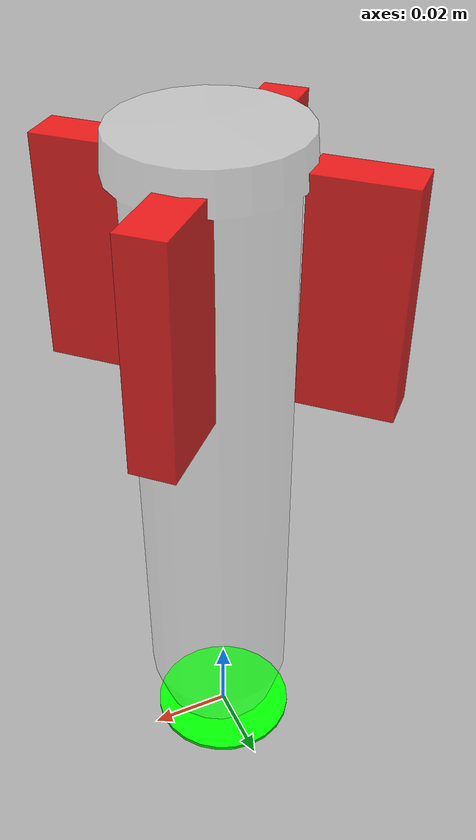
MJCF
<!-- @bbox dx=0.040 dy=0.042 dz=0.180 -->
<mujoco model="test_tube">
   <compiler angle="radian"/>
   <default>
    <default class="visual">
      <geom group="1" type="mesh" contype="0" conaffinity="0" mass="0.01"/>
    </default>
    <default class="collision">
      <geom group="3" solref="0.001 2" solimp="0.998 0.998 0.001" friction="1 1 0.001" mass="0"/>
    </default>
    <default class="keypoint">
      <site type="sphere" size="0.01" group="3" rgba="1 0 0 1"/>
    </default>
    <default class="grasppoint">
      <site type="sphere" size="0.02" group="4" rgba="0 0 1 0.2"/>
    </default>
  </default>
  <asset>
    <material name="cap" specular="0.5" shininess="0.006280824" rgba="1. 1. 1. 100000"/>
    <material name="body" rgba="1. 1. 1. 0.2520"/>

    <material name="CuCl2" rgba="0.141000 1.000000 0.174043 0.400000"/>
    <material name="CuSO4" rgba="0 0.45 1 0.400000"/>
    <material name="FeCl3" rgba="0.6475 0.5686 0.023 0.400000"/>
    <material name="KMnO4" rgba="0.5 0 0.5 0.4"/>
    <material name="I2" rgba="0.3 0.13 0.0 0.4"/>
    <material name="K2CrO4" rgba="0.57 0.12 0.013 0.40000"/>
    <material name="NaCl" rgba="1 1 1 0.3"/>
    <material name="AgNO3" rgba="1 1 1 0.3"/>
    <material name="BaCl2" rgba="1 1 1 0.3"/>
    <material name="H2SO4" rgba="1 1 1 0.3"/>
    <material name="NaOH" rgba="1 1 1 0.3"/>
    <material name="Ba(NO3)2" rgba="1 1 1 0.3"/>
    <material name="Pb(NO3)2" rgba="1 1 1 0.3"/>
    <material name="Na2CO3" rgba="1 1 1 0.3"/>
    <material name="CaCl2" rgba="1 1 1 0.3"/>
    <material name="HCl" rgba="1 1 1 0.3"/>
    <material name="CaSO4" rgba="1 1 1 0.7"/>
    <mesh name="solution" file="tube_0.obj" scale="0.018 0.018 0.018"/>
    <mesh name="cap" file="tube_1.obj" scale="0.018 0.018 0.018"/>
    <mesh name="body" file="tube_2.obj" scale="0.018 0.018 0.018"/>
  </asset>
  <worldbody>
    <body name="tube" euler="1.57 0 0">
      <geom name="solution" type="mesh" mesh="solution" material="CaSO4" class="visual"/>
      <geom type="mesh" mesh="body" material="body" class="visual"/>
      <geom type="mesh" mesh="solution" class="collision"/>
      <geom type="mesh" mesh="body" class="collision"/>
      <geom type="box" class="collision" pos="0.002 0.13 0" size="0.018 0.018 0.018"/>
      <geom name="tube_base_visual" type="cylinder" size="0.018 0.0005" pos="0 0.0005 0" quat="0.7071068 0.7071068 0 0" rgba="0 1 0 1" class="visual"/>
      <geom name="tube_base_collision" type="cylinder" size="0.018 0.0005" pos="0 0.0005 0" quat="0.7071068 0.7071068 0 0" class="collision"/>
      <!-- Visual plates (contype=0 conaffinity=0 → rgba renders fully). Rotated ±45° around Y. -->
      <geom name="grip_plate_x_v_1" type="box" size="0.0105 0.025 0.005" pos="0.020 0.135 0.020" quat="0.9238795 0 -0.3826834 0" contype="0" conaffinity="0" group="2" rgba="1 0 0 0.8"/>
      <geom name="grip_plate_y_v_1" type="box" size="0.0105 0.025 0.005" pos="-0.020 0.135 0.020" quat="0.9238795 0 0.3826834 0" contype="0" conaffinity="0" group="2" rgba="1 0 0 0.8"/>
      <geom name="grip_plate_x_v_2" type="box" size="0.0105 0.025 0.005" pos="0.020 0.135 -0.020" quat="0.9238795 0 0.3826834 0" contype="0" conaffinity="0" group="2" rgba="1 0 0 0.8"/>
      <geom name="grip_plate_y_v_2" type="box" size="0.0105 0.025 0.005" pos="-0.020 0.135 -0.020" quat="0.9238795 0 -0.3826834 0" contype="0" conaffinity="0" group="2" rgba="1 0 0 0.8"/>
      <!-- Collision plates: only collide with finger pads (contype=2 conaffinity=2). Rotated ±45° around Y. -->
      <geom name="grip_plate_x" type="box" size="0.0105 0.025 0.005" pos="0.020 0.135 0.020" quat="0.9238795 0 -0.3826834 0" contype="2" conaffinity="2" group="3" condim="6" friction="4 4 0.1" density="50" solref="0.001 1"/>
      <geom name="grip_plate_y" type="box" size="0.0105 0.025 0.005" pos="-0.020 0.135 0.020" quat="0.9238795 0 0.3826834 0" contype="2" conaffinity="2" group="3" condim="6" friction="4 4 0.1" density="50" solref="0.001 1"/>
      <geom name="grip_plate_x2" type="box" size="0.0105 0.025 0.005" pos="0.020 0.135 -0.020" quat="0.9238795 0 0.3826834 0" contype="2" conaffinity="2" group="3" condim="6" friction="4 4 0.1" density="50" solref="0.001 1"/>
      <geom name="grip_plate_y2" type="box" size="0.0105 0.025 0.005" pos="-0.020 0.135 -0.020" quat="0.9238795 0 -0.3826834 0" contype="2" conaffinity="2" group="3" condim="6" friction="4 4 0.1" density="50" solref="0.001 1"/>
    </body>
    <site class="grasppoint" pos="0 0 0.14"/>
    <site class="keypoint" name="top_site" pos="0 0 0.15"/>
    <site class="keypoint" name="bottom_site" pos="0 0 0"/>
    <!-- placepoint (group=2): 管口位置（mesh 上沿 z≈0.166），供 dispense/insert 使用 -->
    <site name="placepoint" pos="0 0 0.175" size="0.01" group="2" rgba="0 0 1 0"/>
  </worldbody>
</mujoco>
